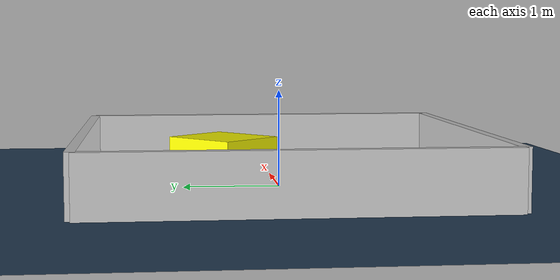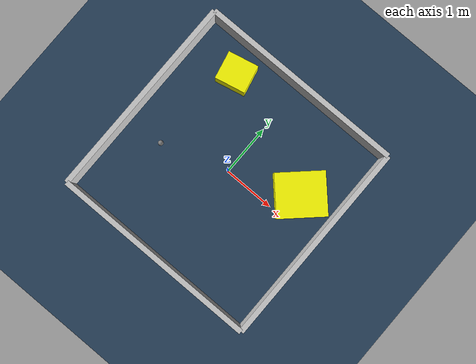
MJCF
<?xml version="1.0" ?>
<mujoco model="generated_environment">
  <option timestep="0.01" integrator="RK4" cone="elliptic"/>
  <default>
    <geom density="1"/>
  </default>
  <asset>
    <texture builtin="gradient" height="3072" rgb1="0.3 0.5 0.7" rgb2="0 0 0" type="skybox" width="512"/>
    <texture builtin="checker" height="300" mark="edge" markrgb="0.8 0.8 0.8" name="groundplane" rgb1="0.2 0.3 0.4" rgb2="0.1 0.2 0.3" type="2d" width="300"/>
    <material name="groundplane" reflectance="0.2" texrepeat="5 5" texture="groundplane" texuniform="true"/>
    <material name="robot" rgba="0.0 1.0 0.0 1"/>
  </asset>
  <worldbody>
    <light dir="0 0 -1" directional="true" pos="0 0 1.5"/>
    <geom condim="4" friction="1.0 0.005 0.001" material="groundplane" name="floor" size="0 0 0.05" type="plane"/>
    <body name="walls">
      <geom name="wall_1" condim="4" pos="-2.0 0.0 0.3" rgba="0.800000011920929 0.800000011920929 0.800000011920929 1.0" size="0.05 2.0 0.3" type="box"/>
      <geom name="wall_2" condim="4" pos="2.0 0.0 0.3" rgba="0.800000011920929 0.800000011920929 0.800000011920929 1.0" size="0.05 2.0 0.3" type="box"/>
      <geom name="wall_3" condim="4" pos="0.0 -2.0 0.3" rgba="0.800000011920929 0.800000011920929 0.800000011920929 1.0" size="2.0 0.05 0.3" type="box"/>
      <geom name="wall_4" condim="4" pos="0.0 2.0 0.3" rgba="0.800000011920929 0.800000011920929 0.800000011920929 1.0" size="2.0 0.05 0.3" type="box"/>
    </body>
    <body name="robot">
      <joint name="joint_x" type="slide" pos="0 0 0" axis="1 0 0"/>
      <joint name="joint_y" type="slide" pos="0 0 0" axis="0 1 0"/>
      <geom name="robot" type="sphere" pos="-1.2429395214946735 -0.3973065702190517 0.2" size="0.05" mass="5." friction="1.0 0.005 0.0001" condim="4"/>
      <site name="sensor_ball"/>
    </body>
    <body name="obstacle_1_movable">
      <geom name="obstacle_1_movable" condim="4" pos="-1.013651018880065 1.4462646029976591 0.2" euler="0 0 12.590672650436296" friction="1.0 0.005 0.001" rgba="1 1 0 1" size="0.2977082588422925 0.2726260005423967 0.2" type="box" mass="0.1"/>
      <joint type="free"/>
    </body>
    <body name="obstacle_2_movable">
      <geom name="obstacle_2_movable" condim="4" pos="1.2757653628956607 0.5095616986590481 0.2" euler="0 0 133.1011251013826" friction="1.0 0.005 0.001" rgba="1 1 0 1" size="0.4127201796176771 0.46317929132602226 0.2" type="box" mass="0.1"/>
      <joint type="free"/>
    </body>
  </worldbody>
  <actuator>
    <motor name="actuator_x" joint="joint_x" gear="1" ctrlrange="-1 1"/>
    <motor name="actuator_y" joint="joint_y" gear="1" ctrlrange="-1 1"/>
  </actuator>
</mujoco>
